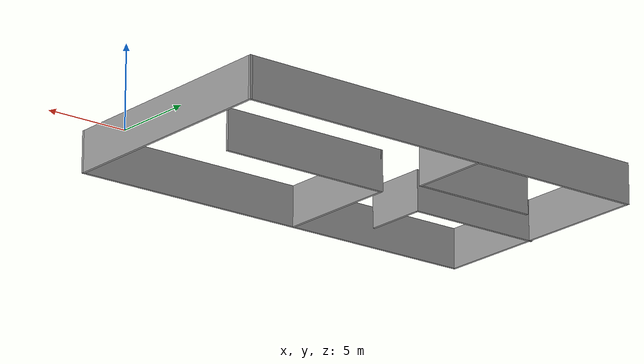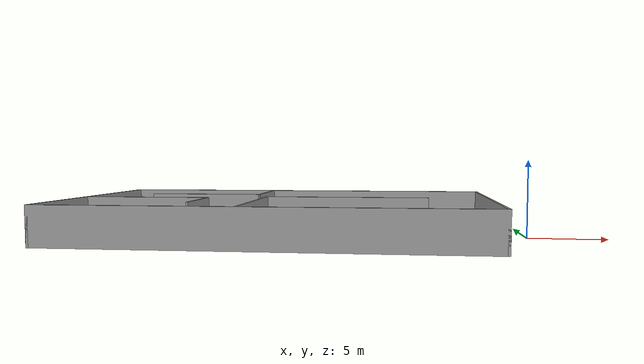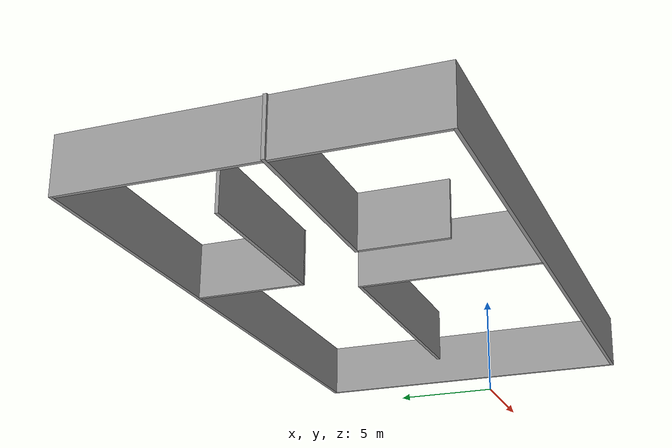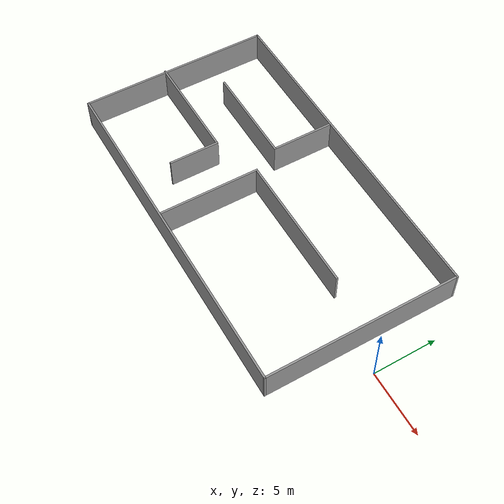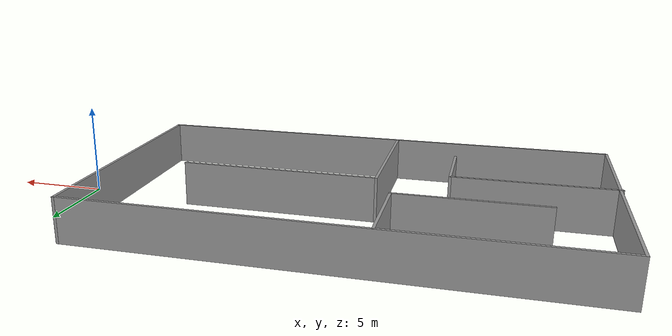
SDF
<?xml version='1.0'?>
<sdf version='1.7'>
  <model name='room'>
    <pose>-14.7831 0.522845 0 0 -0 0</pose>
    <link name='Wall_0'>
      <collision name='Wall_0_Collision'>
        <geometry>
          <box>
            <size>15.25 0.15 2.5</size>
          </box>
        </geometry>
        <pose>0 0 1.25 0 -0 0</pose>
      </collision>
      <visual name='Wall_0_Visual'>
        <pose>0 0 1.25 0 -0 0</pose>
        <geometry>
          <box>
            <size>15.25 0.15 2.5</size>
          </box>
        </geometry>
        <material>
          <script>
            <uri>file://media/materials/scripts/gazebo.material</uri>
            <name>Gazebo/Grey</name>
          </script>
          <ambient>1 1 1 1</ambient>
        </material>
        <meta>
          <layer>0</layer>
        </meta>
      </visual>
      <pose>-14.6011 -0 0 0 -0 -1.5708</pose>
    </link>
    <link name='Wall_1'>
      <collision name='Wall_1_Collision'>
        <geometry>
          <box>
            <size>27.25 0.15 2.5</size>
          </box>
        </geometry>
        <pose>0 0 1.25 0 -0 0</pose>
      </collision>
      <visual name='Wall_1_Visual'>
        <pose>0 0 1.25 0 -0 0</pose>
        <geometry>
          <box>
            <size>27.25 0.15 2.5</size>
          </box>
        </geometry>
        <material>
          <script>
            <uri>file://media/materials/scripts/gazebo.material</uri>
            <name>Gazebo/Grey</name>
          </script>
          <ambient>1 1 1 1</ambient>
        </material>
        <meta>
          <layer>0</layer>
        </meta>
      </visual>
      <pose>-1.05106 -7.55 0 0 -0 0</pose>
    </link>
    <link name='Wall_11'>
      <collision name='Wall_11_Collision'>
        <geometry>
          <box>
            <size>8 0.15 2.5</size>
          </box>
        </geometry>
        <pose>0 0 1.25 0 -0 0</pose>
      </collision>
      <visual name='Wall_11_Visual'>
        <pose>0 0 1.25 0 -0 0</pose>
        <geometry>
          <box>
            <size>8 0.15 2.5</size>
          </box>
        </geometry>
        <material>
          <script>
            <uri>file://media/materials/scripts/gazebo.material</uri>
            <name>Gazebo/Grey</name>
          </script>
          <ambient>1 1 1 1</ambient>
        </material>
        <meta>
          <layer>0</layer>
        </meta>
      </visual>
      <pose>-2.34899 -3.5057 0 0 -0 1.5708</pose>
    </link>
    <link name='Wall_12'>
      <collision name='Wall_12_Collision'>
        <geometry>
          <box>
            <size>11 0.15 2.5</size>
          </box>
        </geometry>
        <pose>0 0 1.25 0 -0 0</pose>
      </collision>
      <visual name='Wall_12_Visual'>
        <pose>0 0 1.25 0 -0 0</pose>
        <geometry>
          <box>
            <size>11 0.15 2.5</size>
          </box>
        </geometry>
        <material>
          <script>
            <uri>file://media/materials/scripts/gazebo.material</uri>
            <name>Gazebo/Grey</name>
          </script>
          <ambient>1 1 1 1</ambient>
        </material>
        <meta>
          <layer>0</layer>
        </meta>
      </visual>
      <pose>3.07601 0.4193 0 0 -0 0</pose>
    </link>
    <link name='Wall_2'>
      <collision name='Wall_2_Collision'>
        <geometry>
          <box>
            <size>15.25 0.15 2.5</size>
          </box>
        </geometry>
        <pose>0 0 1.25 0 -0 0</pose>
      </collision>
      <visual name='Wall_2_Visual'>
        <pose>0 0 1.25 0 -0 0</pose>
        <geometry>
          <box>
            <size>15.25 0.15 2.5</size>
          </box>
        </geometry>
        <material>
          <script>
            <uri>file://media/materials/scripts/gazebo.material</uri>
            <name>Gazebo/Grey</name>
          </script>
          <ambient>1 1 1 1</ambient>
        </material>
        <meta>
          <layer>0</layer>
        </meta>
      </visual>
      <pose>12.4989 -0 0 0 -0 1.5708</pose>
    </link>
    <link name='Wall_3'>
      <collision name='Wall_3_Collision'>
        <geometry>
          <box>
            <size>27.25 0.15 2.5</size>
          </box>
        </geometry>
        <pose>0 0 1.25 0 -0 0</pose>
      </collision>
      <visual name='Wall_3_Visual'>
        <pose>0 0 1.25 0 -0 0</pose>
        <geometry>
          <box>
            <size>27.25 0.15 2.5</size>
          </box>
        </geometry>
        <material>
          <script>
            <uri>file://media/materials/scripts/gazebo.material</uri>
            <name>Gazebo/Grey</name>
          </script>
          <ambient>1 1 1 1</ambient>
        </material>
        <meta>
          <layer>0</layer>
        </meta>
      </visual>
      <pose>-1.05106 7.55 0 0 -0 3.14159</pose>
    </link>
    <link name='Wall_5'>
      <collision name='Wall_5_Collision'>
        <geometry>
          <box>
            <size>8 0.15 2.5</size>
          </box>
        </geometry>
        <pose>0 0 1.25 0 -0 0</pose>
      </collision>
      <visual name='Wall_5_Visual'>
        <pose>0 0 1.25 0 -0 0</pose>
        <geometry>
          <box>
            <size>8 0.15 2.5</size>
          </box>
        </geometry>
        <material>
          <script>
            <uri>file://media/materials/scripts/gazebo.material</uri>
            <name>Gazebo/Grey</name>
          </script>
          <ambient>1 1 1 1</ambient>
        </material>
        <meta>
          <layer>0</layer>
        </meta>
      </visual>
      <pose>-7.35891 2.62777 0 0 -0 0</pose>
    </link>
    <link name='Wall_6'>
      <collision name='Wall_6_Collision'>
        <geometry>
          <box>
            <size>5 0.15 2.5</size>
          </box>
        </geometry>
        <pose>0 0 1.25 0 -0 0</pose>
      </collision>
      <visual name='Wall_6_Visual'>
        <pose>0 0 1.25 0 -0 0</pose>
        <geometry>
          <box>
            <size>5 0.15 2.5</size>
          </box>
        </geometry>
        <material>
          <script>
            <uri>file://media/materials/scripts/gazebo.material</uri>
            <name>Gazebo/Grey</name>
          </script>
          <ambient>1 1 1 1</ambient>
        </material>
        <meta>
          <layer>0</layer>
        </meta>
      </visual>
      <pose>-3.43391 5.05277 0 0 -0 1.5708</pose>
    </link>
    <link name='Wall_8'>
      <collision name='Wall_8_Collision'>
        <geometry>
          <box>
            <size>8.75 0.15 2.5</size>
          </box>
        </geometry>
        <pose>0 0 1.25 0 -0 0</pose>
      </collision>
      <visual name='Wall_8_Visual'>
        <pose>0 0 1.25 0 -0 0</pose>
        <geometry>
          <box>
            <size>8.75 0.15 2.5</size>
          </box>
        </geometry>
        <material>
          <script>
            <uri>file://media/materials/scripts/gazebo.material</uri>
            <name>Gazebo/Grey</name>
          </script>
          <ambient>1 1 1 1</ambient>
        </material>
        <meta>
          <layer>0</layer>
        </meta>
      </visual>
      <pose>-10.4081 -0.849893 0 0 -0 0</pose>
    </link>
    <link name='Wall_9'>
      <collision name='Wall_9_Collision'>
        <geometry>
          <box>
            <size>4 0.15 2.5</size>
          </box>
        </geometry>
        <pose>0 0 1.25 0 -0 0</pose>
      </collision>
      <visual name='Wall_9_Visual'>
        <pose>0 0 1.25 0 -0 0</pose>
        <geometry>
          <box>
            <size>4 0.15 2.5</size>
          </box>
        </geometry>
        <material>
          <script>
            <uri>file://media/materials/scripts/gazebo.material</uri>
            <name>Gazebo/Grey</name>
          </script>
          <ambient>1 1 1 1</ambient>
        </material>
        <meta>
          <layer>0</layer>
        </meta>
      </visual>
      <pose>-6.10807 -2.77489 0 0 -0 -1.5708</pose>
    </link>
    <static>1</static>
  </model>
</sdf>
